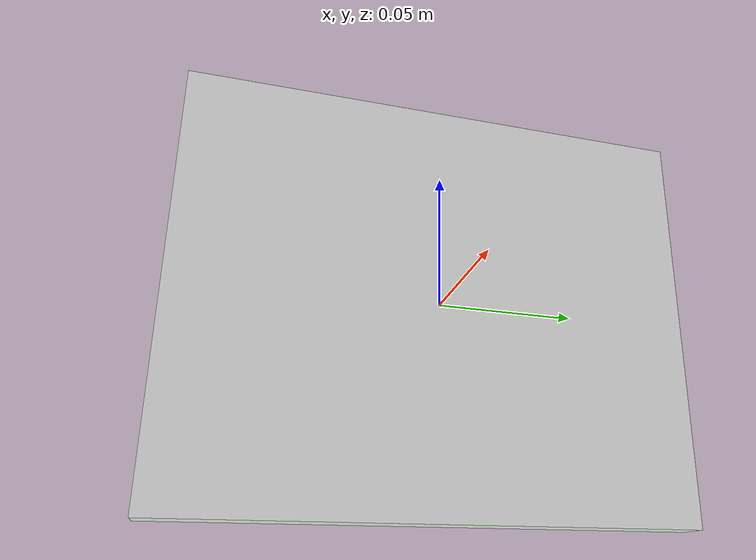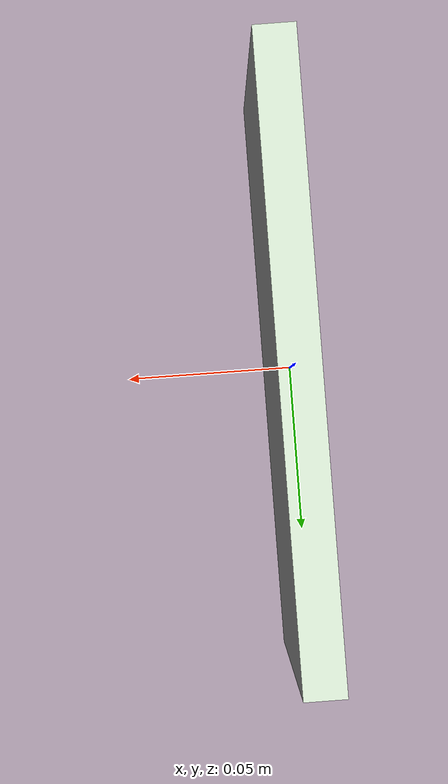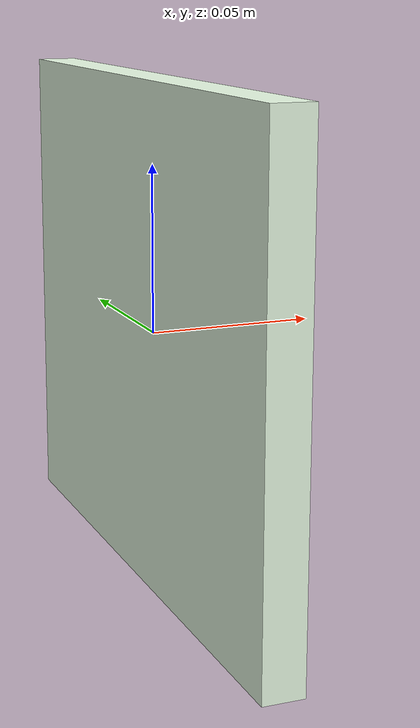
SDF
<?xml version="1.0" ?>
<sdf version="1.9">
  <model name="ccs2_inlet_cube">
    <link name="link">
      <visual name="visual">
        <geometry>
          <mesh>
            <scale>0.13 0.13 0.13</scale>
            <uri>ccs2_inlet_box.dae</uri>
          </mesh>
        </geometry>
      </visual>
      <collision name="collision">
        <geometry>
          <mesh>
            <scale>0.13 0.13 0.13</scale>
            <uri>ccs2_inlet_box.dae</uri>
          </mesh>
        </geometry>
      </collision>
    </link>
  </model>
</sdf>
